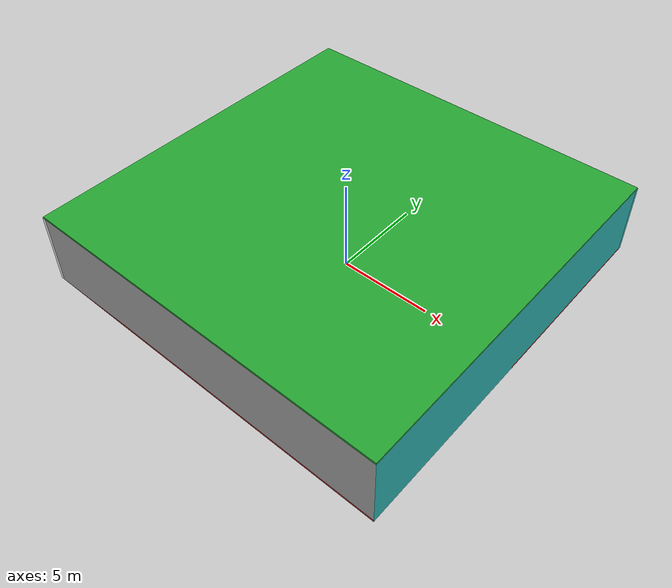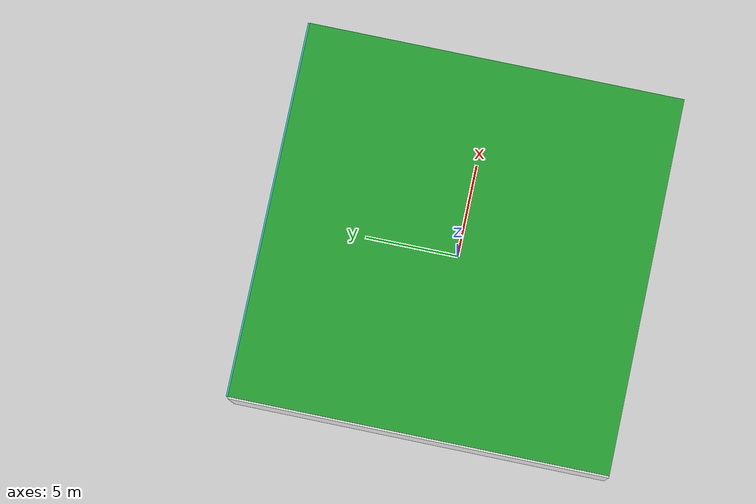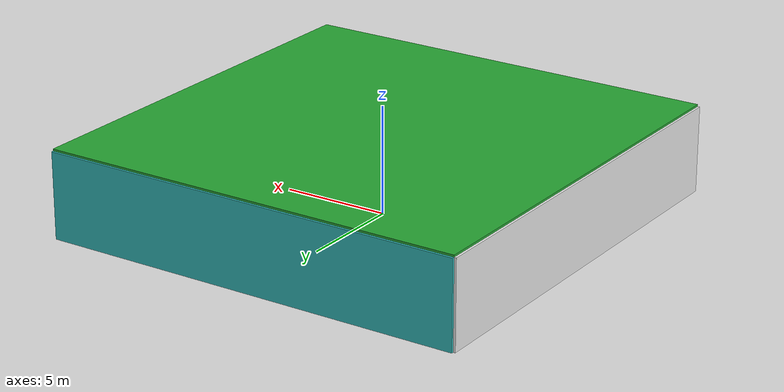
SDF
<sdf version="1.4">
 <world name="default">
  <physics type="ode">
   <max_step_size>0.001</max_step_size>
   <real_time_factor>1</real_time_factor>
   <real_time_update_rate>1000</real_time_update_rate>
   <gravity>0 0 -9.8</gravity>
  </physics>
  <scene><ambient>0.4 0.4 0.4 1</ambient><background>0.7 0.7 0.7 1</background><shadows>1</shadows></scene>
  <model name="Surrounding">
   <static>1</static>
   <link name="Ceiling">
    <collision name="Ceiling_Collision"><geometry><box><size>20 20 0.1</size></box></geometry></collision>
    <visual name="Ceiling_Visual">
     <geometry><box><size>20 20 0.1</size></box></geometry>
     <material>
      <script><uri>file://media/materials/scripts/gazebo.material</uri><name>Gazebo/Green</name></script>
     </material>
    </visual>
    <pose>0 0 4.05 0 0 0</pose>
   </link>
   <link name="Wall_South">
    <collision name="Wall_South_Collision">
     <geometry><box><size>20 0 4</size></box></geometry>
     <pose>0 0 2 0 -0 0</pose>
    </collision>
    <visual name="Wall_South_Visual">
     <pose>0 0 2 0 -0 0</pose>
     <geometry><box><size>20 0 4</size></box></geometry>
     <material>
      <script><uri>file://media/materials/scripts/gazebo.material</uri><name>Gazebo/Grey</name></script>
     </material>
    </visual>
    <velocity_decay><linear>0</linear><angular>0</angular></velocity_decay>
    <pose>0 -10 0 0 -0 0</pose>
   </link>
   <link name="Wall_East">
    <collision name="Wall_21_Collision">
     <geometry><box><size>20 0 4</size></box></geometry>
     <pose>0 0 2 0 -0 0</pose>
    </collision>
    <visual name="Wall_21_Visual">
     <pose>0 0 2 0 -0 0</pose>
     <geometry><box><size>20 0 4</size></box></geometry>
     <material>
      <script><uri>file://media/materials/scripts/gazebo.material</uri><name>Gazebo/TurquoiseGlow</name></script>
     </material>
    </visual>
    <velocity_decay><linear>0</linear><angular>0</angular></velocity_decay>
    <pose>10 0 0 0 -0 1.5708</pose>
   </link>
   <link name="Wall_North">
    <collision name="Wall_22_Collision">
     <geometry><box><size>20 0.2 4</size></box></geometry>
     <pose>0 0 2 0 -0 0</pose>
    </collision>
    <visual name="Wall_22_Visual">
     <pose>0 0 2 0 -0 0</pose>
     <geometry><box><size>20 0.2 4</size></box></geometry>
     <material>
      <script>
       <uri>file://media/materials/scripts/gazebo.material</uri>
       <name>Gazebo/TurquoiseGlowOutline</name>
      </script>
     </material>
    </visual>
    <velocity_decay><linear>0</linear><angular>0</angular></velocity_decay>
    <pose>0 10 0 0 -0 0</pose>
   </link>
   <link name="Wall_West">
    <collision name="Wall_23_Collision">
     <geometry><box><size>20 0.2 4</size></box></geometry>
     <pose>0 0 2 0 -0 0</pose>
    </collision>
    <visual name="Wall_23_Visual">
     <pose>0 0 2 0 -0 0</pose>
     <geometry><box><size>20 0.2 4</size></box></geometry>
     <material>
      <script><uri>file://media/materials/scripts/gazebo.material</uri><name>Gazebo/White</name></script>
     </material>
    </visual>
    <velocity_decay><linear>0</linear><angular>0</angular></velocity_decay>
    <pose>-10 0 0 0 0 -1.5708</pose>
   </link>
   <link name="Ground_link">
    <collision name="collision">
     <pose>0 0 .05 0 -0 0</pose>
     <geometry><box><size>20 20 0.1</size></box></geometry>
    </collision>
    <visual name="visual">
     <pose>0 0 .05 0 -0 0</pose>
     <geometry><box><size>20 20 0.1</size></box></geometry>
     <material>
      <script><uri>file://media/materials/scripts/gazebo.material</uri><name>Gazebo/RedGlow</name></script>
     </material>
    </visual>
   </link>
   <static>1</static>
  </model>
  <spherical_coordinates>
   <surface_model>EARTH_WGS84</surface_model>
   <latitude_deg>0</latitude_deg>
   <longitude_deg>0</longitude_deg>
   <elevation>0</elevation>
   <heading_deg>0</heading_deg>
  </spherical_coordinates>
  <light name="lightball_0" type="diffuse">
   <diffuse>0.8 0.8 0.8 1</diffuse>
   <specular>0.2 0.2 0.2 1</specular>
   <attenuation>
    <range>100</range>
    <constant>0.7</constant>
    <linear>0.01</linear>
    <quadratic>0.001</quadratic>
   </attenuation>
   <direction>-0.5 0.1 -0.9</direction>
   <pose>7.24101886998 -0.0275182173414 2.66770056361 0 0 0</pose>
  </light>
  <light name="lightball_1" type="diffuse">
   <diffuse>0.8 0.8 0.8 1</diffuse>
   <specular>0.2 0.2 0.2 1</specular>
   <attenuation>
    <range>100</range>
    <constant>0.7</constant>
    <linear>0.01</linear>
    <quadratic>0.001</quadratic>
   </attenuation>
   <direction>-0.5 0.1 -0.9</direction>
   <pose>-5.04426162026 0.217243276569 1.40013793902 0 0 0</pose>
  </light>
  <light name="lightball_2" type="diffuse">
   <diffuse>0.8 0.8 0.8 1</diffuse>
   <specular>0.2 0.2 0.2 1</specular>
   <attenuation>
    <range>100</range>
    <constant>0.7</constant>
    <linear>0.01</linear>
    <quadratic>0.001</quadratic>
   </attenuation>
   <direction>-0.5 0.1 -0.9</direction>
   <pose>5.01919438366 -7.41492061163 2.03857031585 0 0 0</pose>
  </light>
  <light name="lightball_3" type="diffuse">
   <diffuse>0.8 0.8 0.8 1</diffuse>
   <specular>0.2 0.2 0.2 1</specular>
   <attenuation>
    <range>100</range>
    <constant>0.7</constant>
    <linear>0.01</linear>
    <quadratic>0.001</quadratic>
   </attenuation>
   <direction>-0.5 0.1 -0.9</direction>
   <pose>-2.01929773071 -5.37368307822 1.83386142865 0 0 0</pose>
  </light>
  <light name="lightball_4" type="diffuse">
   <diffuse>0.8 0.8 0.8 1</diffuse>
   <specular>0.2 0.2 0.2 1</specular>
   <attenuation>
    <range>100</range>
    <constant>0.7</constant>
    <linear>0.01</linear>
    <quadratic>0.001</quadratic>
   </attenuation>
   <direction>-0.5 0.1 -0.9</direction>
   <pose>-1.27091028491 7.29205897397 1.58329572273 0 0 0</pose>
  </light>
  <light name="lightball_5" type="diffuse">
   <diffuse>0.8 0.8 0.8 1</diffuse>
   <specular>0.2 0.2 0.2 1</specular>
   <attenuation>
    <range>100</range>
    <constant>0.7</constant>
    <linear>0.01</linear>
    <quadratic>0.001</quadratic>
   </attenuation>
   <direction>-0.5 0.1 -0.9</direction>
   <pose>-2.70254940794 -6.6189652619 2.27891320285 0 0 0</pose>
  </light>
  <light name="lightball_6" type="diffuse">
   <diffuse>0.8 0.8 0.8 1</diffuse>
   <specular>0.2 0.2 0.2 1</specular>
   <attenuation>
    <range>100</range>
    <constant>0.7</constant>
    <linear>0.01</linear>
    <quadratic>0.001</quadratic>
   </attenuation>
   <direction>-0.5 0.1 -0.9</direction>
   <pose>-5.69626387287 -2.19333489977 3.12090005416 0 0 0</pose>
  </light>
  <light name="lightball_7" type="diffuse">
   <diffuse>0.8 0.8 0.8 1</diffuse>
   <specular>0.2 0.2 0.2 1</specular>
   <attenuation>
    <range>100</range>
    <constant>0.7</constant>
    <linear>0.01</linear>
    <quadratic>0.001</quadratic>
   </attenuation>
   <direction>-0.5 0.1 -0.9</direction>
   <pose>6.44222918442 -0.324490192425 3.1528528064 0 0 0</pose>
  </light>
  <light name="lightball_8" type="diffuse">
   <diffuse>0.8 0.8 0.8 1</diffuse>
   <specular>0.2 0.2 0.2 1</specular>
   <attenuation>
    <range>100</range>
    <constant>0.7</constant>
    <linear>0.01</linear>
    <quadratic>0.001</quadratic>
   </attenuation>
   <direction>-0.5 0.1 -0.9</direction>
   <pose>2.77842247393 0.48779952719 2.63115561001 0 0 0</pose>
  </light>
  <light name="lightball_9" type="diffuse">
   <diffuse>0.8 0.8 0.8 1</diffuse>
   <specular>0.2 0.2 0.2 1</specular>
   <attenuation>
    <range>100</range>
    <constant>0.7</constant>
    <linear>0.01</linear>
    <quadratic>0.001</quadratic>
   </attenuation>
   <direction>-0.5 0.1 -0.9</direction>
   <pose>-7.89735975792 8.16133422834 0.602382138229 0 0 0</pose>
  </light>
  <light name="lightball_10" type="diffuse">
   <diffuse>0.8 0.8 0.8 1</diffuse>
   <specular>0.2 0.2 0.2 1</specular>
   <attenuation>
    <range>100</range>
    <constant>0.7</constant>
    <linear>0.01</linear>
    <quadratic>0.001</quadratic>
   </attenuation>
   <direction>-0.5 0.1 -0.9</direction>
   <pose>-2.43508202486 1.81986057776 1.66712018096 0 0 0</pose>
  </light>
  <include><uri>model://cabinet</uri><pose>-7.97422772895 1.83901018091 0 0 0 2.79555601457</pose></include>
  <include><uri>model://cabinet</uri><pose>-1.13065512672 7.27355403216 0 0 0 2.40349779009</pose></include>
  <include><uri>model://table</uri><pose>4.08747831011 -7.7443793723 0 0 0 1.86195368745</pose></include>
  <include>
   <uri>model://robocup_3Dsim_goal</uri>
   <pose>4.10413198519 8.0900195855 0 0 0 0.102050072302</pose>
  </include>
 </world>
</sdf>

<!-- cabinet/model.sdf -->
<sdf version="1.5">
  <model name="cabinet">
    <static>true</static>
    <link name="cabinet_bottom_plate">
      <inertial>
        <pose>0 0 -1 0 0 0</pose>
        <inertia>
          <ixx>2.050000</ixx>
          <ixy>0</ixy>
          <ixz>0</ixz>
          <iyy>2.050000</iyy>
          <iyz>0</iyz>
          <izz>2.050000</izz>
        </inertia>
        <mass>25.000000</mass>
      </inertial>
      <collision name="cabinet_bottom_plate_geom">
        <pose>0 0 0.010000 0 0 0</pose>
        <geometry>
          <box>
            <size>0.450000 0.450000 0.020000</size>
          </box>
        </geometry>
      </collision>
      <visual name="cabinet_bottom_plate_geom_visual">
        <pose>0 0 0.010000 0 0 0</pose>
        <geometry>
          <box>
            <size>0.450000 0.450000 0.020000</size>
          </box>
        </geometry>
        <material>
          <script>
            <uri>model://media/materials/scripts/gazebo.material</uri>
            <name>Gazebo/Wood</name>
          </script>
        </material>
      </visual>
      <collision name="cabinet_bottom_plate_geom_cabinet_back_plate">
        <pose>0.235000 0 0.510000 0 0 0</pose>
        <geometry>
          <box>
            <size>0.020000 0.450000 1.020000</size>
          </box>
        </geometry>
      </collision>
      <visual name="cabinet_bottom_plate_geom_cabinet_back_plate_visual">
        <pose>0.235000 0 0.510000 0 0 0</pose>
        <geometry>
          <box>
            <size>0.020000 0.450000 1.020000</size>
          </box>
        </geometry>
        <material>
          <script>
            <uri>model://media/materials/scripts/gazebo.material</uri>
            <name>Gazebo/Wood</name>
          </script>
        </material>
      </visual>
      <collision name="cabinet_bottom_plate_geom_cabinet_left_plate">
        <pose>0 0.235000 0.510000 0 0 0</pose>
        <geometry>
          <box>
            <size>0.450000 0.020000 1.020000</size>
          </box>
        </geometry>
      </collision>
      <visual name="cabinet_bottom_plate_geom_cabinet_left_plate_visual">
        <pose>0 0.235000 0.510000 0 0 0</pose>
        <geometry>
          <box>
            <size>0.450000 0.020000 1.020000</size>
          </box>
        </geometry>
        <material>
          <script>
            <uri>model://media/materials/scripts/gazebo.material</uri>
            <name>Gazebo/Wood</name>
          </script>
        </material>
      </visual>
      <collision name="cabinet_bottom_plate_geom_cabinet_middle_plate">
        <pose>0 0 0.510000 0 0 0</pose>
        <geometry>
          <box>
            <size>0.450000 0.450000 0.020000</size>
          </box>
        </geometry>
      </collision>
      <visual name="cabinet_bottom_plate_geom_cabinet_middle_plate_visual">
        <pose>0 0 0.510000 0 0 0</pose>
        <geometry>
          <box>
            <size>0.450000 0.450000 0.020000</size>
          </box>
        </geometry>
        <material>
          <script>
            <uri>model://media/materials/scripts/gazebo.material</uri>
            <name>Gazebo/Wood</name>
          </script>
        </material>
      </visual>
      <collision name="cabinet_bottom_plate_geom_cabinet_right_plate">
        <pose>0 -0.235000 0.510000 0 0 0</pose>
        <geometry>
          <box>
            <size>0.450000 0.020000 1.020000</size>
          </box>
        </geometry>
      </collision>
      <visual name="cabinet_bottom_plate_geom_cabinet_right_plate_visual">
        <pose>0 -0.235000 0.510000 0 0 0</pose>
        <geometry>
          <box>
            <size>0.450000 0.020000 1.020000</size>
          </box>
        </geometry>
        <material>
          <script>
            <uri>model://media/materials/scripts/gazebo.material</uri>
            <name>Gazebo/Wood</name>
          </script>
        </material>
      </visual>
      <collision name="cabinet_bottom_plate_geom_cabinet_top_plate">
        <pose>0 0 1.010000 0 0 0</pose>
        <geometry>
          <box>
            <size>0.450000 0.450000 0.020000</size>
          </box>
        </geometry>
      </collision>
      <visual name="cabinet_bottom_plate_geom_cabinet_top_plate_visual">
        <pose>0 0 1.010000 0 0 0</pose>
        <geometry>
          <box>
            <size>0.450000 0.450000 0.020000</size>
          </box>
        </geometry>
        <material>
          <script>
            <uri>model://media/materials/scripts/gazebo.material</uri>
            <name>Gazebo/Wood</name>
          </script>
        </material>
      </visual>
    </link>
  </model>
</sdf>

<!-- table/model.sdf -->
<sdf version="1.5">
  <model name="table">
    <static>true</static>
    <link name="link">
      <collision name="surface">
        <pose>0 0 1.0 0 0 0</pose>
        <geometry>
          <box>
            <size>1.5 0.8 0.03</size>
          </box>
        </geometry>
        <surface>
          <friction>
            <ode>
              <mu>0.6</mu>
              <mu2>0.6</mu2>
            </ode>
          </friction>
        </surface>
      </collision>
      <visual name="visual1">
        <pose>0 0 1.0 0 0 0</pose>
        <geometry>
          <box>
            <size>1.5 0.8 0.03</size>
          </box>
        </geometry>
        <material>
          <script>
            <uri>model://media/materials/scripts/gazebo.material</uri>
            <name>Gazebo/Wood</name>
          </script>
        </material>
      </visual>
      <collision name="front_left_leg">
        <pose>0.68 0.38 0.5 0 0 0</pose>
        <geometry>
          <cylinder>
            <radius>0.02</radius>
            <length>1.0</length>
          </cylinder>
        </geometry>
      </collision>
      <visual name="front_left_leg">
        <pose>0.68 0.38 0.5 0 0 0</pose>
        <geometry>
          <cylinder>
            <radius>0.02</radius>
            <length>1.0</length>
          </cylinder>
        </geometry>
        <material>
          <script>
            <uri>model://media/materials/scripts/gazebo.material</uri>
            <name>Gazebo/Grey</name>
          </script>
        </material>
      </visual>
      <collision name="front_right_leg">
        <pose>0.68 -0.38 0.5 0 0 0</pose>
        <geometry>
          <cylinder>
            <radius>0.02</radius>
            <length>1.0</length>
          </cylinder>
        </geometry>
      </collision>
      <visual name="front_right_leg">
        <pose>0.68 -0.38 0.5 0 0 0</pose>
        <geometry>
          <cylinder>
            <radius>0.02</radius>
            <length>1.0</length>
          </cylinder>
        </geometry>
        <material>
          <script>
            <uri>model://media/materials/scripts/gazebo.material</uri>
            <name>Gazebo/Grey</name>
          </script>
        </material>
      </visual>
      <collision name="back_right_leg">
        <pose>-0.68 -0.38 0.5 0 0 0</pose>
        <geometry>
          <cylinder>
            <radius>0.02</radius>
            <length>1.0</length>
          </cylinder>
        </geometry>
      </collision>
      <visual name="back_right_leg">
        <pose>-0.68 -0.38 0.5 0 0 0</pose>
        <geometry>
          <cylinder>
            <radius>0.02</radius>
            <length>1.0</length>
          </cylinder>
        </geometry>
        <material>
          <script>
            <uri>model://media/materials/scripts/gazebo.material</uri>
            <name>Gazebo/Grey</name>
          </script>
        </material>
      </visual>
      <collision name="back_left_leg">
        <pose>-0.68 0.38 0.5 0 0 0</pose>
        <geometry>
          <cylinder>
            <radius>0.02</radius>
            <length>1.0</length>
          </cylinder>
        </geometry>
      </collision>
      <visual name="back_left_leg">
        <pose>-0.68 0.38 0.5 0 0 0</pose>
        <geometry>
          <cylinder>
            <radius>0.02</radius>
            <length>1.0</length>
          </cylinder>
        </geometry>
        <material>
          <script>
            <uri>model://media/materials/scripts/gazebo.material</uri>
            <name>Gazebo/Grey</name>
          </script>
        </material>
      </visual>
    </link>
  </model>
</sdf>

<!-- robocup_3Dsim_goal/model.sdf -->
<sdf version="1.5">
  <model name="robocup_3d_goal">
    <static>true</static>
    <link name="left_post">
      <pose>0 1.05 0.45 0 0 0</pose>
      <collision name="collision">
        <geometry>
          <cylinder>
            <radius>0.05</radius>
            <length>0.9</length>
          </cylinder>
        </geometry>
      </collision>
      <visual name="visual">
        <geometry>
          <cylinder>
            <radius>0.05</radius>
            <length>0.9</length>
          </cylinder>
        </geometry>
        <material>
          <script>
            <uri>file://media/materials/scripts/gazebo.material</uri>
            <name>Gazebo/ZincYellow</name>
          </script>
        </material>
      </visual>
    </link>
    <link name="left_support_horiz_lower">
      <pose>0.30 1.05 0.01 0 0 0</pose>
      <collision name="collision">
        <geometry>
          <box>
            <size>0.50 0.02 0.02</size>
          </box>
        </geometry>
      </collision>
      <visual name="visual">
        <geometry>
          <box>
            <size>0.50 0.02 0.02</size>
          </box>
        </geometry>
        <material>
          <script>
            <uri>file://media/materials/scripts/gazebo.material</uri>
            <name>Gazebo/White</name>
          </script>
        </material>
      </visual>
    </link>
    <link name="left_support_horiz_upper">
      <pose>0.30 1.05 0.79 0 0 0</pose>
      <collision name="collision">
        <geometry>
          <box>
            <size>0.50 0.02 0.02</size>
          </box>
        </geometry>
      </collision>
      <visual name="visual">
        <geometry>
          <box>
            <size>0.50 0.02 0.02</size>
          </box>
        </geometry>
        <material>
          <script>
            <uri>file://media/materials/scripts/gazebo.material</uri>
            <name>Gazebo/White</name>
          </script>
        </material>
      </visual>
    </link>
    <link name="left_support_vertical">
      <pose>0.56 1.05 0.4 0 1.5708 0</pose>
      <collision name="collision">
        <geometry>
          <box>
            <size>0.80 0.02 0.02</size>
          </box>
        </geometry>
      </collision>
      <visual name="visual">
        <geometry>
          <box>
            <size>0.80 0.02 0.02</size>
          </box>
        </geometry>
        <material>
          <script>
            <uri>file://media/materials/scripts/gazebo.material</uri>
            <name>Gazebo/White</name>
          </script>
        </material>
      </visual>
    </link>
    <link name="right_support_horiz_lower">
      <pose>0.30 -1.05 0.01 0 0 0</pose>
      <collision name="collision">
        <geometry>
          <box>
            <size>0.50 0.02 0.02</size>
          </box>
        </geometry>
      </collision>
      <visual name="visual">
        <geometry>
          <box>
            <size>0.50 0.02 0.02</size>
          </box>
        </geometry>
        <material>
          <script>
            <uri>file://media/materials/scripts/gazebo.material</uri>
            <name>Gazebo/White</name>
          </script>
        </material>
      </visual>
    </link>
    <link name="right_support_horiz_upper">
      <pose>0.30 -1.05 0.79 0 0 0</pose>
      <collision name="collision">
        <geometry>
          <box>
            <size>0.50 0.02 0.02</size>
          </box>
        </geometry>
      </collision>
      <visual name="visual">
        <geometry>
          <box>
            <size>0.50 0.02 0.02</size>
          </box>
        </geometry>
        <material>
          <script>
            <uri>file://media/materials/scripts/gazebo.material</uri>
            <name>Gazebo/White</name>
          </script>
        </material>
      </visual>
    </link>
    <link name="right_support_vertical">
      <pose>0.56 -1.05 0.4 0 1.5708 0</pose>
      <collision name="collision">
        <geometry>
          <box>
            <size>0.80 0.02 0.02</size>
          </box>
        </geometry>
      </collision>
      <visual name="visual">
        <geometry>
          <box>
            <size>0.80 0.02 0.02</size>
          </box>
        </geometry>
        <material>
          <script>
            <uri>file://media/materials/scripts/gazebo.material</uri>
            <name>Gazebo/White</name>
          </script>
        </material>
      </visual>
    </link>
    <link name="center_support_horiz_lower">
      <pose>0.56 0 0.01 0 1.5708 0</pose>
      <collision name="collision">
        <geometry>
          <box>
            <size>0.02 2.08 0.02</size>
          </box>
        </geometry>
      </collision>
      <visual name="visual">
        <geometry>
          <box>
            <size>0.02 2.08 0.02</size>
          </box>
        </geometry>
        <material>
          <script>
            <uri>file://media/materials/scripts/gazebo.material</uri>
            <name>Gazebo/White</name>
          </script>
        </material>
      </visual>
    </link>
    <link name="center_support_horiz_upper">
      <pose>0.56 0 0.79 0 1.5708 0</pose>
      <collision name="collision">
        <geometry>
          <box>
            <size>0.02 2.08 0.02</size>
          </box>
        </geometry>
      </collision>
      <visual name="visual">
        <geometry>
          <box>
            <size>0.02 2.08 0.02</size>
          </box>
        </geometry>
        <material>
          <script>
            <uri>file://media/materials/scripts/gazebo.material</uri>
            <name>Gazebo/White</name>
          </script>
        </material>
      </visual>
    </link>
    <link name="right_post">
      <pose>0 -1.05 0.45 0 0 0</pose>
      <collision name="collision">
        <geometry>
          <cylinder>
            <radius>0.05</radius>
            <length>0.9</length>
          </cylinder>
        </geometry>
      </collision>
      <visual name="visual">
        <geometry>
          <cylinder>
            <radius>0.05</radius>
            <length>0.9</length>
          </cylinder>
        </geometry>
        <material>
          <script>
            <uri>file://media/materials/scripts/gazebo.material</uri>
            <name>Gazebo/ZincYellow</name>
          </script>
        </material>
      </visual>
    </link>
    <link name="crossbar">
      <pose>0 0 0.85 1.57 1.57 0</pose>
      <collision name="collision">
        <geometry>
          <cylinder>
            <radius>0.05</radius>
            <length>2.0</length>
          </cylinder>
        </geometry>
      </collision>
      <visual name="visual">
        <geometry>
          <cylinder>
            <radius>0.05</radius>
            <length>2.0</length>
          </cylinder>
        </geometry>
        <material>
          <script>
            <uri>file://media/materials/scripts/gazebo.material</uri>
            <name>Gazebo/ZincYellow</name>
          </script>
        </material>
      </visual>
    </link>
    <link name="center_net">
      <pose>0.56 0 0.40 0 0 0</pose>
      <collision name="collision">
        <geometry>
          <box>
            <size>0.01 2.1 0.80</size>
          </box>
        </geometry>
      </collision>
      <visual name="visual">
        <geometry>
          <box>
            <size>0.01 2.1 0.80</size>
          </box>
        </geometry>
        <material>
          <script>
            <uri>model://../model_source/models/robocup09_spl_field/materials/scripts/</uri>
            <uri>model://../model_source/models/robocup09_spl_field/materials/textures/</uri>
            <name>RoboCup/Net</name>
          </script>
        </material>
      </visual>
    </link>
    <link name="left_net">
      <pose>0.30 1.05 0.40 0 0 0</pose>
      <collision name="collision">
        <geometry>
          <box>
            <size>0.50 0.01 0.76</size>
          </box>
        </geometry>
      </collision>
      <visual name="visual">
        <geometry>
          <box>
            <size>0.50 0.01 0.76</size>
          </box>
        </geometry>
        <material>
          <script>
            <uri>model://../model_source/models/robocup09_spl_field/materials/scripts/</uri>
            <uri>model://../model_source/models/robocup09_spl_field/materials/textures/</uri>
            <name>RoboCup/Net</name>
          </script>
        </material>
      </visual>
    </link>
    <link name="right_net">
      <pose>0.30 -1.05 0.40 0 0 0</pose>
      <collision name="collision">
        <geometry>
          <box>
            <size>0.50 0.01 0.76</size>
          </box>
        </geometry>
      </collision>
      <visual name="visual">
        <geometry>
          <box>
            <size>0.50 0.01 0.76</size>
          </box>
        </geometry>
        <material>
          <script>
            <uri>model://../model_source/models/robocup09_spl_field/materials/scripts/</uri>
            <uri>model://../model_source/models/robocup09_spl_field/materials/textures/</uri>
            <name>RoboCup/Net</name>
          </script>
        </material>
      </visual>
    </link>
  </model>
</sdf>
